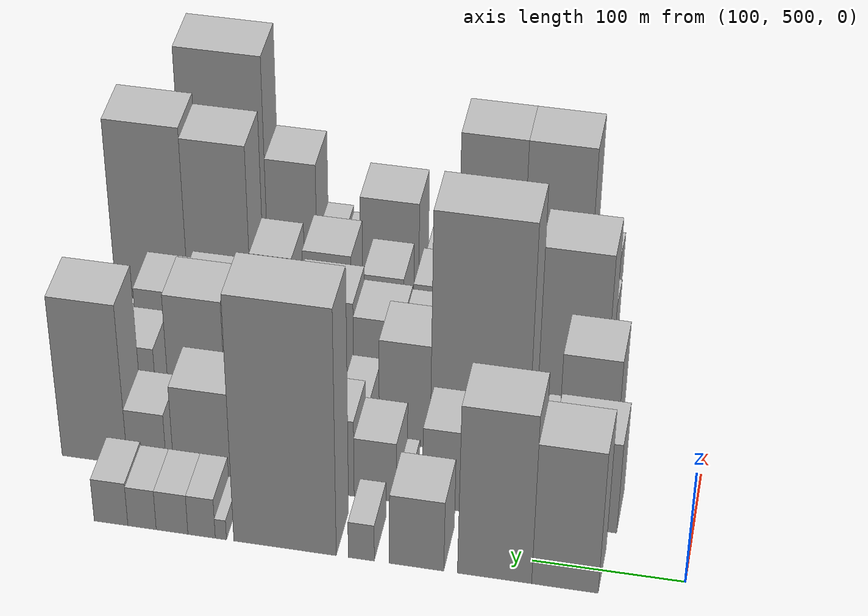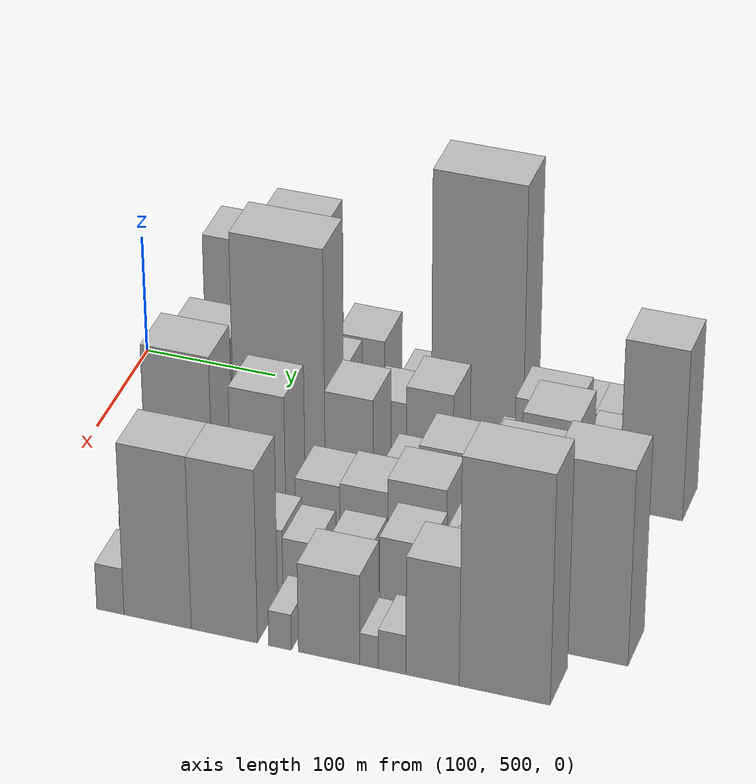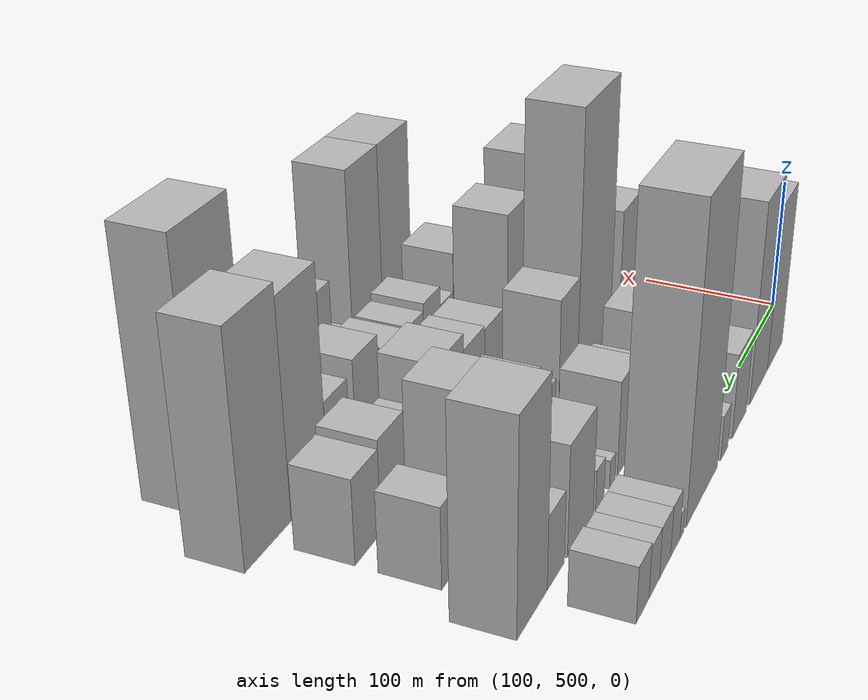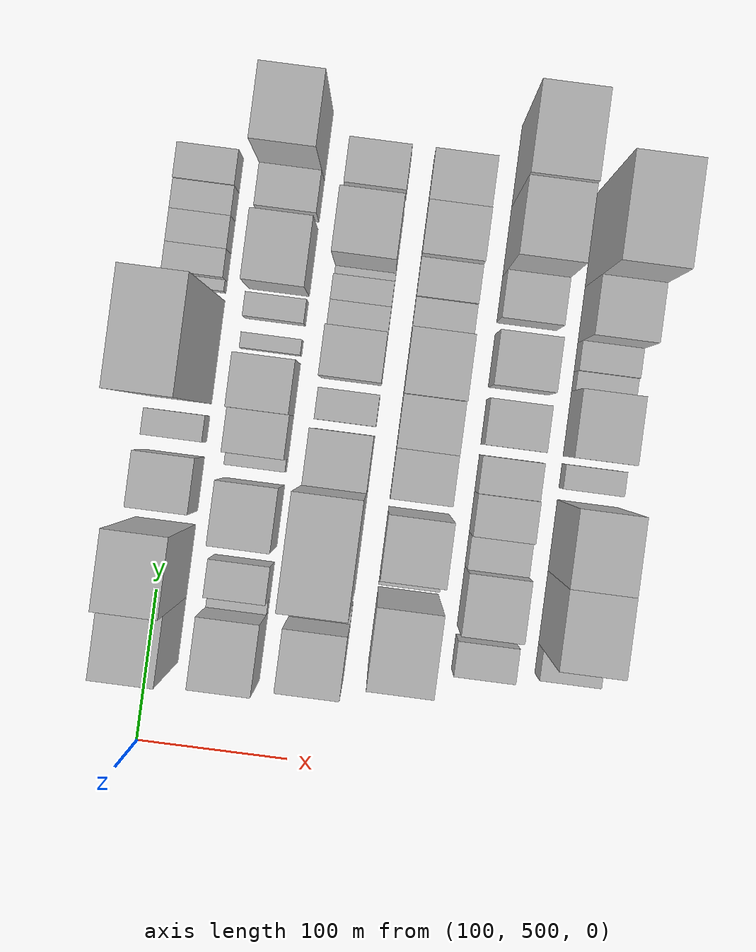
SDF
<sdf version="1.6">
 <world name="default">
  <model name="building_36">
   <static>1</static>
   <pose>100.0000 575.8749 0 0.000000 0.000000 0.000000</pose>
   <link name="link">
    <pose>0 0 63.00 0 0 0</pose>
    <collision name="collision"><geometry><box><size>40.0000 43.3255 126.0000</size></box></geometry></collision>
    <visual name="visual">
     <cast_shadows>0</cast_shadows>
     <geometry><box><size>40.0000 43.3255 126.0000</size></box></geometry>
     <material>
      <script>
       <uri>model://HANNAS_wall/materials/scripts</uri>
       <uri>model://HANNAS_wall/materials/textures</uri>
       <name>vrc/HANNAS_wall</name>
      </script>
     </material>
    </visual>
   </link>
  </model>
  <model name="building_37">
   <static>1</static>
   <pose>100.0000 621.8524 0 0.000000 0.000000 0.000000</pose>
   <link name="link">
    <pose>0 0 75.00 0 0 0</pose>
    <collision name="collision"><geometry><box><size>40.0000 48.6295 150.0000</size></box></geometry></collision>
    <visual name="visual">
     <cast_shadows>0</cast_shadows>
     <geometry><box><size>40.0000 48.6295 150.0000</size></box></geometry>
     <material>
      <script>
       <uri>model://HANNAS_wall/materials/scripts</uri>
       <uri>model://HANNAS_wall/materials/textures</uri>
       <name>vrc/HANNAS_wall</name>
      </script>
     </material>
    </visual>
   </link>
  </model>
  <model name="building_38">
   <static>1</static>
   <pose>100.0000 673.1736 0 0.000000 0.000000 0.000000</pose>
   <link name="link">
    <pose>0 0 31.50 0 0 0</pose>
    <collision name="collision"><geometry><box><size>40.0000 36.0130 63.0000</size></box></geometry></collision>
    <visual name="visual">
     <cast_shadows>0</cast_shadows>
     <geometry><box><size>40.0000 36.0130 63.0000</size></box></geometry>
     <material>
      <script>
       <uri>model://HANNAS_wall/materials/scripts</uri>
       <uri>model://HANNAS_wall/materials/textures</uri>
       <name>vrc/HANNAS_wall</name>
      </script>
     </material>
    </visual>
   </link>
  </model>
  <model name="building_39">
   <static>1</static>
   <pose>100.0000 709.8207 0 0.000000 0.000000 0.000000</pose>
   <link name="link">
    <pose>0 0 16.50 0 0 0</pose>
    <collision name="collision"><geometry><box><size>40.0000 17.2811 33.0000</size></box></geometry></collision>
    <visual name="visual">
     <cast_shadows>0</cast_shadows>
     <geometry><box><size>40.0000 17.2811 33.0000</size></box></geometry>
     <material>
      <script>
       <uri>model://HANNAS_wall/materials/scripts</uri>
       <uri>model://HANNAS_wall/materials/textures</uri>
       <name>vrc/HANNAS_wall</name>
      </script>
     </material>
    </visual>
   </link>
  </model>
  <model name="building_40">
   <static>1</static>
   <pose>100.0000 760.8265 0 0.000000 0.000000 0.000000</pose>
   <link name="link">
    <pose>0 0 108.00 0 0 0</pose>
    <collision name="collision"><geometry><box><size>40.0000 68.7305 216.0000</size></box></geometry></collision>
    <visual name="visual">
     <cast_shadows>0</cast_shadows>
     <geometry><box><size>40.0000 68.7305 216.0000</size></box></geometry>
     <material>
      <script>
       <uri>model://HANNAS_wall/materials/scripts</uri>
       <uri>model://HANNAS_wall/materials/textures</uri>
       <name>vrc/HANNAS_wall</name>
      </script>
     </material>
    </visual>
   </link>
  </model>
  <model name="building_41">
   <static>1</static>
   <pose>100.0000 803.9687 0 0.000000 0.000000 0.000000</pose>
   <link name="link">
    <pose>0 0 9.00 0 0 0</pose>
    <collision name="collision"><geometry><box><size>40.0000 7.5538 18.0000</size></box></geometry></collision>
    <visual name="visual">
     <cast_shadows>0</cast_shadows>
     <geometry><box><size>40.0000 7.5538 18.0000</size></box></geometry>
     <material>
      <script>
       <uri>model://HANNAS_wall/materials/scripts</uri>
       <uri>model://HANNAS_wall/materials/textures</uri>
       <name>vrc/HANNAS_wall</name>
      </script>
     </material>
    </visual>
   </link>
  </model>
  <model name="building_42">
   <static>1</static>
   <pose>100.0000 817.0140 0 0.000000 0.000000 0.000000</pose>
   <link name="link">
    <pose>0 0 18.00 0 0 0</pose>
    <collision name="collision"><geometry><box><size>40.0000 18.5368 36.0000</size></box></geometry></collision>
    <visual name="visual">
     <cast_shadows>0</cast_shadows>
     <geometry><box><size>40.0000 18.5368 36.0000</size></box></geometry>
     <material>
      <script>
       <uri>model://HANNAS_wall/materials/scripts</uri>
       <uri>model://HANNAS_wall/materials/textures</uri>
       <name>vrc/HANNAS_wall</name>
      </script>
     </material>
    </visual>
   </link>
  </model>
  <model name="building_43">
   <static>1</static>
   <pose>100.0000 837.0378 0 0.000000 0.000000 0.000000</pose>
   <link name="link">
    <pose>0 0 18.00 0 0 0</pose>
    <collision name="collision"><geometry><box><size>40.0000 21.5109 36.0000</size></box></geometry></collision>
    <visual name="visual">
     <cast_shadows>0</cast_shadows>
     <geometry><box><size>40.0000 21.5109 36.0000</size></box></geometry>
     <material>
      <script>
       <uri>model://HANNAS_wall/materials/scripts</uri>
       <uri>model://HANNAS_wall/materials/textures</uri>
       <name>vrc/HANNAS_wall</name>
      </script>
     </material>
    </visual>
   </link>
  </model>
  <model name="building_44">
   <static>1</static>
   <pose>100.0000 857.4511 0 0.000000 0.000000 0.000000</pose>
   <link name="link">
    <pose>0 0 18.00 0 0 0</pose>
    <collision name="collision"><geometry><box><size>40.0000 19.3156 36.0000</size></box></geometry></collision>
    <visual name="visual">
     <cast_shadows>0</cast_shadows>
     <geometry><box><size>40.0000 19.3156 36.0000</size></box></geometry>
     <material>
      <script>
       <uri>model://HANNAS_wall/materials/scripts</uri>
       <uri>model://HANNAS_wall/materials/textures</uri>
       <name>vrc/HANNAS_wall</name>
      </script>
     </material>
    </visual>
   </link>
  </model>
  <model name="building_45">
   <static>1</static>
   <pose>100.0000 878.6003 0 0.000000 0.000000 0.000000</pose>
   <link name="link">
    <pose>0 0 19.50 0 0 0</pose>
    <collision name="collision"><geometry><box><size>40.0000 22.9828 39.0000</size></box></geometry></collision>
    <visual name="visual">
     <cast_shadows>0</cast_shadows>
     <geometry><box><size>40.0000 22.9828 39.0000</size></box></geometry>
     <material>
      <script>
       <uri>model://HANNAS_wall/materials/scripts</uri>
       <uri>model://HANNAS_wall/materials/textures</uri>
       <name>vrc/HANNAS_wall</name>
      </script>
     </material>
    </visual>
   </link>
  </model>
  <model name="building_89">
   <static>1</static>
   <pose>155.0000 571.9804 0 0.000000 0.000000 0.000000</pose>
   <link name="link">
    <pose>0 0 40.50 0 0 0</pose>
    <collision name="collision"><geometry><box><size>40.0000 45.4613 81.0000</size></box></geometry></collision>
    <visual name="visual">
     <cast_shadows>0</cast_shadows>
     <geometry><box><size>40.0000 45.4613 81.0000</size></box></geometry>
     <material>
      <script>
       <uri>model://HANNAS_wall/materials/scripts</uri>
       <uri>model://HANNAS_wall/materials/textures</uri>
       <name>vrc/HANNAS_wall</name>
      </script>
     </material>
    </visual>
   </link>
  </model>
  <model name="building_90">
   <static>1</static>
   <pose>155.0000 599.2020 0 0.000000 0.000000 0.000000</pose>
   <link name="link">
    <pose>0 0 9.00 0 0 0</pose>
    <collision name="collision"><geometry><box><size>40.0000 8.9819 18.0000</size></box></geometry></collision>
    <visual name="visual">
     <cast_shadows>0</cast_shadows>
     <geometry><box><size>40.0000 8.9819 18.0000</size></box></geometry>
     <material>
      <script>
       <uri>model://HANNAS_wall/materials/scripts</uri>
       <uri>model://HANNAS_wall/materials/textures</uri>
       <name>vrc/HANNAS_wall</name>
      </script>
     </material>
    </visual>
   </link>
  </model>
  <model name="building_91">
   <static>1</static>
   <pose>155.0000 616.0212 0 0.000000 0.000000 0.000000</pose>
   <link name="link">
    <pose>0 0 24.00 0 0 0</pose>
    <collision name="collision"><geometry><box><size>40.0000 24.6564 48.0000</size></box></geometry></collision>
    <visual name="visual">
     <cast_shadows>0</cast_shadows>
     <geometry><box><size>40.0000 24.6564 48.0000</size></box></geometry>
     <material>
      <script>
       <uri>model://HANNAS_wall/materials/scripts</uri>
       <uri>model://HANNAS_wall/materials/textures</uri>
       <name>vrc/HANNAS_wall</name>
      </script>
     </material>
    </visual>
   </link>
  </model>
  <model name="building_92">
   <static>1</static>
   <pose>155.0000 658.9368 0 0.000000 0.000000 0.000000</pose>
   <link name="link">
    <pose>0 0 36.00 0 0 0</pose>
    <collision name="collision"><geometry><box><size>40.0000 41.1748 72.0000</size></box></geometry></collision>
    <visual name="visual">
     <cast_shadows>0</cast_shadows>
     <geometry><box><size>40.0000 41.1748 72.0000</size></box></geometry>
     <material>
      <script>
       <uri>model://HANNAS_wall/materials/scripts</uri>
       <uri>model://HANNAS_wall/materials/textures</uri>
       <name>vrc/HANNAS_wall</name>
      </script>
     </material>
    </visual>
   </link>
  </model>
  <model name="building_93">
   <static>1</static>
   <pose>155.0000 692.7965 0 0.000000 0.000000 0.000000</pose>
   <link name="link">
    <pose>0 0 10.50 0 0 0</pose>
    <collision name="collision"><geometry><box><size>40.0000 8.5447 21.0000</size></box></geometry></collision>
    <visual name="visual">
     <cast_shadows>0</cast_shadows>
     <geometry><box><size>40.0000 8.5447 21.0000</size></box></geometry>
     <material>
      <script>
       <uri>model://HANNAS_wall/materials/scripts</uri>
       <uri>model://HANNAS_wall/materials/textures</uri>
       <name>vrc/HANNAS_wall</name>
      </script>
     </material>
    </visual>
   </link>
  </model>
  <model name="building_94">
   <static>1</static>
   <pose>155.0000 711.4034 0 0.000000 0.000000 0.000000</pose>
   <link name="link">
    <pose>0 0 27.00 0 0 0</pose>
    <collision name="collision"><geometry><box><size>40.0000 28.6690 54.0000</size></box></geometry></collision>
    <visual name="visual">
     <cast_shadows>0</cast_shadows>
     <geometry><box><size>40.0000 28.6690 54.0000</size></box></geometry>
     <material>
      <script>
       <uri>model://HANNAS_wall/materials/scripts</uri>
       <uri>model://HANNAS_wall/materials/textures</uri>
       <name>vrc/HANNAS_wall</name>
      </script>
     </material>
    </visual>
   </link>
  </model>
  <model name="building_95">
   <static>1</static>
   <pose>155.0000 743.0413 0 0.000000 0.000000 0.000000</pose>
   <link name="link">
    <pose>0 0 34.50 0 0 0</pose>
    <collision name="collision"><geometry><box><size>40.0000 34.6069 69.0000</size></box></geometry></collision>
    <visual name="visual">
     <cast_shadows>0</cast_shadows>
     <geometry><box><size>40.0000 34.6069 69.0000</size></box></geometry>
     <material>
      <script>
       <uri>model://HANNAS_wall/materials/scripts</uri>
       <uri>model://HANNAS_wall/materials/textures</uri>
       <name>vrc/HANNAS_wall</name>
      </script>
     </material>
    </visual>
   </link>
  </model>
  <model name="building_96">
   <static>1</static>
   <pose>155.0000 770.4422 0 0.000000 0.000000 0.000000</pose>
   <link name="link">
    <pose>0 0 10.50 0 0 0</pose>
    <collision name="collision"><geometry><box><size>40.0000 10.1949 21.0000</size></box></geometry></collision>
    <visual name="visual">
     <cast_shadows>0</cast_shadows>
     <geometry><box><size>40.0000 10.1949 21.0000</size></box></geometry>
     <material>
      <script>
       <uri>model://HANNAS_wall/materials/scripts</uri>
       <uri>model://HANNAS_wall/materials/textures</uri>
       <name>vrc/HANNAS_wall</name>
      </script>
     </material>
    </visual>
   </link>
  </model>
  <model name="building_97">
   <static>1</static>
   <pose>155.0000 793.4193 0 0.000000 0.000000 0.000000</pose>
   <link name="link">
    <pose>0 0 15.00 0 0 0</pose>
    <collision name="collision"><geometry><box><size>40.0000 15.7592 30.0000</size></box></geometry></collision>
    <visual name="visual">
     <cast_shadows>0</cast_shadows>
     <geometry><box><size>40.0000 15.7592 30.0000</size></box></geometry>
     <material>
      <script>
       <uri>model://HANNAS_wall/materials/scripts</uri>
       <uri>model://HANNAS_wall/materials/textures</uri>
       <name>vrc/HANNAS_wall</name>
      </script>
     </material>
    </visual>
   </link>
  </model>
  <model name="building_98">
   <static>1</static>
   <pose>155.0000 827.5954 0 0.000000 0.000000 0.000000</pose>
   <link name="link">
    <pose>0 0 39.00 0 0 0</pose>
    <collision name="collision"><geometry><box><size>40.0000 44.5930 78.0000</size></box></geometry></collision>
    <visual name="visual">
     <cast_shadows>0</cast_shadows>
     <geometry><box><size>40.0000 44.5930 78.0000</size></box></geometry>
     <material>
      <script>
       <uri>model://HANNAS_wall/materials/scripts</uri>
       <uri>model://HANNAS_wall/materials/textures</uri>
       <name>vrc/HANNAS_wall</name>
      </script>
     </material>
    </visual>
   </link>
  </model>
  <model name="building_99">
   <static>1</static>
   <pose>155.0000 868.5410 0 0.000000 0.000000 0.000000</pose>
   <link name="link">
    <pose>0 0 25.50 0 0 0</pose>
    <collision name="collision"><geometry><box><size>40.0000 27.2983 51.0000</size></box></geometry></collision>
    <visual name="visual">
     <cast_shadows>0</cast_shadows>
     <geometry><box><size>40.0000 27.2983 51.0000</size></box></geometry>
     <material>
      <script>
       <uri>model://HANNAS_wall/materials/scripts</uri>
       <uri>model://HANNAS_wall/materials/textures</uri>
       <name>vrc/HANNAS_wall</name>
      </script>
     </material>
    </visual>
   </link>
  </model>
  <model name="building_100">
   <static>1</static>
   <pose>155.0000 905.0949 0 0.000000 0.000000 0.000000</pose>
   <link name="link">
    <pose>0 0 72.00 0 0 0</pose>
    <collision name="collision"><geometry><box><size>40.0000 45.8095 144.0000</size></box></geometry></collision>
    <visual name="visual">
     <cast_shadows>0</cast_shadows>
     <geometry><box><size>40.0000 45.8095 144.0000</size></box></geometry>
     <material>
      <script>
       <uri>model://HANNAS_wall/materials/scripts</uri>
       <uri>model://HANNAS_wall/materials/textures</uri>
       <name>vrc/HANNAS_wall</name>
      </script>
     </material>
    </visual>
   </link>
  </model>
  <model name="building_142">
   <static>1</static>
   <pose>210.0000 577.0656 0 0.000000 0.000000 0.000000</pose>
   <link name="link">
    <pose>0 0 51.00 0 0 0</pose>
    <collision name="collision"><geometry><box><size>40.0000 39.5125 102.0000</size></box></geometry></collision>
    <visual name="visual">
     <cast_shadows>0</cast_shadows>
     <geometry><box><size>40.0000 39.5125 102.0000</size></box></geometry>
     <material>
      <script>
       <uri>model://HANNAS_wall/materials/scripts</uri>
       <uri>model://HANNAS_wall/materials/textures</uri>
       <name>vrc/HANNAS_wall</name>
      </script>
     </material>
    </visual>
   </link>
  </model>
  <model name="building_143">
   <static>1</static>
   <pose>210.0000 602.8694 0 0.000000 0.000000 0.000000</pose>
   <link name="link">
    <pose>0 0 13.50 0 0 0</pose>
    <collision name="collision"><geometry><box><size>40.0000 12.0950 27.0000</size></box></geometry></collision>
    <visual name="visual">
     <cast_shadows>0</cast_shadows>
     <geometry><box><size>40.0000 12.0950 27.0000</size></box></geometry>
     <material>
      <script>
       <uri>model://HANNAS_wall/materials/scripts</uri>
       <uri>model://HANNAS_wall/materials/textures</uri>
       <name>vrc/HANNAS_wall</name>
      </script>
     </material>
    </visual>
   </link>
  </model>
  <model name="building_144">
   <static>1</static>
   <pose>210.0000 650.5392 0 0.000000 0.000000 0.000000</pose>
   <link name="link">
    <pose>0 0 105.00 0 0 0</pose>
    <collision name="collision"><geometry><box><size>40.0000 67.2447 210.0000</size></box></geometry></collision>
    <visual name="visual">
     <cast_shadows>0</cast_shadows>
     <geometry><box><size>40.0000 67.2447 210.0000</size></box></geometry>
     <material>
      <script>
       <uri>model://HANNAS_wall/materials/scripts</uri>
       <uri>model://HANNAS_wall/materials/textures</uri>
       <name>vrc/HANNAS_wall</name>
      </script>
     </material>
    </visual>
   </link>
  </model>
  <model name="building_145">
   <static>1</static>
   <pose>210.0000 701.8258 0 0.000000 0.000000 0.000000</pose>
   <link name="link">
    <pose>0 0 46.50 0 0 0</pose>
    <collision name="collision"><geometry><box><size>40.0000 35.3285 93.0000</size></box></geometry></collision>
    <visual name="visual">
     <cast_shadows>0</cast_shadows>
     <geometry><box><size>40.0000 35.3285 93.0000</size></box></geometry>
     <material>
      <script>
       <uri>model://HANNAS_wall/materials/scripts</uri>
       <uri>model://HANNAS_wall/materials/textures</uri>
       <name>vrc/HANNAS_wall</name>
      </script>
     </material>
    </visual>
   </link>
  </model>
  <model name="building_146">
   <static>1</static>
   <pose>210.0000 735.7352 0 0.000000 0.000000 0.000000</pose>
   <link name="link">
    <pose>0 0 19.50 0 0 0</pose>
    <collision name="collision"><geometry><box><size>40.0000 20.4902 39.0000</size></box></geometry></collision>
    <visual name="visual">
     <cast_shadows>0</cast_shadows>
     <geometry><box><size>40.0000 20.4902 39.0000</size></box></geometry>
     <material>
      <script>
       <uri>model://HANNAS_wall/materials/scripts</uri>
       <uri>model://HANNAS_wall/materials/textures</uri>
       <name>vrc/HANNAS_wall</name>
      </script>
     </material>
    </visual>
   </link>
  </model>
  <model name="building_147">
   <static>1</static>
   <pose>210.0000 769.1930 0 0.000000 0.000000 0.000000</pose>
   <link name="link">
    <pose>0 0 31.50 0 0 0</pose>
    <collision name="collision"><geometry><box><size>40.0000 32.4254 63.0000</size></box></geometry></collision>
    <visual name="visual">
     <cast_shadows>0</cast_shadows>
     <geometry><box><size>40.0000 32.4254 63.0000</size></box></geometry>
     <material>
      <script>
       <uri>model://HANNAS_wall/materials/scripts</uri>
       <uri>model://HANNAS_wall/materials/textures</uri>
       <name>vrc/HANNAS_wall</name>
      </script>
     </material>
    </visual>
   </link>
  </model>
  <model name="building_148">
   <static>1</static>
   <pose>210.0000 794.3450 0 0.000000 0.000000 0.000000</pose>
   <link name="link">
    <pose>0 0 16.50 0 0 0</pose>
    <collision name="collision"><geometry><box><size>40.0000 17.8786 33.0000</size></box></geometry></collision>
    <visual name="visual">
     <cast_shadows>0</cast_shadows>
     <geometry><box><size>40.0000 17.8786 33.0000</size></box></geometry>
     <material>
      <script>
       <uri>model://HANNAS_wall/materials/scripts</uri>
       <uri>model://HANNAS_wall/materials/textures</uri>
       <name>vrc/HANNAS_wall</name>
      </script>
     </material>
    </visual>
   </link>
  </model>
  <model name="building_149">
   <static>1</static>
   <pose>210.0000 811.6215 0 0.000000 0.000000 0.000000</pose>
   <link name="link">
    <pose>0 0 16.50 0 0 0</pose>
    <collision name="collision"><geometry><box><size>40.0000 16.6745 33.0000</size></box></geometry></collision>
    <visual name="visual">
     <cast_shadows>0</cast_shadows>
     <geometry><box><size>40.0000 16.6745 33.0000</size></box></geometry>
     <material>
      <script>
       <uri>model://HANNAS_wall/materials/scripts</uri>
       <uri>model://HANNAS_wall/materials/textures</uri>
       <name>vrc/HANNAS_wall</name>
      </script>
     </material>
    </visual>
   </link>
  </model>
  <model name="building_150">
   <static>1</static>
   <pose>210.0000 823.3465 0 0.000000 0.000000 0.000000</pose>
   <link name="link">
    <pose>0 0 7.50 0 0 0</pose>
    <collision name="collision"><geometry><box><size>40.0000 6.7756 15.0000</size></box></geometry></collision>
    <visual name="visual">
     <cast_shadows>0</cast_shadows>
     <geometry><box><size>40.0000 6.7756 15.0000</size></box></geometry>
     <material>
      <script>
       <uri>model://HANNAS_wall/materials/scripts</uri>
       <uri>model://HANNAS_wall/materials/textures</uri>
       <name>vrc/HANNAS_wall</name>
      </script>
     </material>
    </visual>
   </link>
  </model>
  <model name="building_151">
   <static>1</static>
   <pose>210.0000 846.8042 0 0.000000 0.000000 0.000000</pose>
   <link name="link">
    <pose>0 0 54.00 0 0 0</pose>
    <collision name="collision"><geometry><box><size>40.0000 40.1398 108.0000</size></box></geometry></collision>
    <visual name="visual">
     <cast_shadows>0</cast_shadows>
     <geometry><box><size>40.0000 40.1398 108.0000</size></box></geometry>
     <material>
      <script>
       <uri>model://HANNAS_wall/materials/scripts</uri>
       <uri>model://HANNAS_wall/materials/textures</uri>
       <name>vrc/HANNAS_wall</name>
      </script>
     </material>
    </visual>
   </link>
  </model>
  <model name="building_152">
   <static>1</static>
   <pose>210.0000 890.4211 0 0.000000 0.000000 0.000000</pose>
   <link name="link">
    <pose>0 0 28.50 0 0 0</pose>
    <collision name="collision"><geometry><box><size>40.0000 29.0940 57.0000</size></box></geometry></collision>
    <visual name="visual">
     <cast_shadows>0</cast_shadows>
     <geometry><box><size>40.0000 29.0940 57.0000</size></box></geometry>
     <material>
      <script>
       <uri>model://HANNAS_wall/materials/scripts</uri>
       <uri>model://HANNAS_wall/materials/textures</uri>
       <name>vrc/HANNAS_wall</name>
      </script>
     </material>
    </visual>
   </link>
  </model>
  <model name="building_196">
   <static>1</static>
   <pose>265.0000 596.4431 0 0.000000 0.000000 0.000000</pose>
   <link name="link">
    <pose>0 0 72.00 0 0 0</pose>
    <collision name="collision"><geometry><box><size>40.0000 49.4608 144.0000</size></box></geometry></collision>
    <visual name="visual">
     <cast_shadows>0</cast_shadows>
     <geometry><box><size>40.0000 49.4608 144.0000</size></box></geometry>
     <material>
      <script>
       <uri>model://HANNAS_wall/materials/scripts</uri>
       <uri>model://HANNAS_wall/materials/textures</uri>
       <name>vrc/HANNAS_wall</name>
      </script>
     </material>
    </visual>
   </link>
  </model>
  <model name="building_197">
   <static>1</static>
   <pose>265.0000 629.4022 0 0.000000 0.000000 0.000000</pose>
   <link name="link">
    <pose>0 0 10.50 0 0 0</pose>
    <collision name="collision"><geometry><box><size>40.0000 10.4574 21.0000</size></box></geometry></collision>
    <visual name="visual">
     <cast_shadows>0</cast_shadows>
     <geometry><box><size>40.0000 10.4574 21.0000</size></box></geometry>
     <material>
      <script>
       <uri>model://HANNAS_wall/materials/scripts</uri>
       <uri>model://HANNAS_wall/materials/textures</uri>
       <name>vrc/HANNAS_wall</name>
      </script>
     </material>
    </visual>
   </link>
  </model>
  <model name="building_198">
   <static>1</static>
   <pose>265.0000 654.6490 0 0.000000 0.000000 0.000000</pose>
   <link name="link">
    <pose>0 0 61.50 0 0 0</pose>
    <collision name="collision"><geometry><box><size>40.0000 40.0362 123.0000</size></box></geometry></collision>
    <visual name="visual">
     <cast_shadows>0</cast_shadows>
     <geometry><box><size>40.0000 40.0362 123.0000</size></box></geometry>
     <material>
      <script>
       <uri>model://HANNAS_wall/materials/scripts</uri>
       <uri>model://HANNAS_wall/materials/textures</uri>
       <name>vrc/HANNAS_wall</name>
      </script>
     </material>
    </visual>
   </link>
  </model>
  <model name="building_199">
   <static>1</static>
   <pose>265.0000 697.8861 0 0.000000 0.000000 0.000000</pose>
   <link name="link">
    <pose>0 0 28.50 0 0 0</pose>
    <collision name="collision"><geometry><box><size>40.0000 32.4381 57.0000</size></box></geometry></collision>
    <visual name="visual">
     <cast_shadows>0</cast_shadows>
     <geometry><box><size>40.0000 32.4381 57.0000</size></box></geometry>
     <material>
      <script>
       <uri>model://HANNAS_wall/materials/scripts</uri>
       <uri>model://HANNAS_wall/materials/textures</uri>
       <name>vrc/HANNAS_wall</name>
      </script>
     </material>
    </visual>
   </link>
  </model>
  <model name="building_200">
   <static>1</static>
   <pose>265.0000 731.2987 0 0.000000 0.000000 0.000000</pose>
   <link name="link">
    <pose>0 0 30.00 0 0 0</pose>
    <collision name="collision"><geometry><box><size>40.0000 34.3870 60.0000</size></box></geometry></collision>
    <visual name="visual">
     <cast_shadows>0</cast_shadows>
     <geometry><box><size>40.0000 34.3870 60.0000</size></box></geometry>
     <material>
      <script>
       <uri>model://HANNAS_wall/materials/scripts</uri>
       <uri>model://HANNAS_wall/materials/textures</uri>
       <name>vrc/HANNAS_wall</name>
      </script>
     </material>
    </visual>
   </link>
  </model>
  <model name="building_201">
   <static>1</static>
   <pose>265.0000 769.5660 0 0.000000 0.000000 0.000000</pose>
   <link name="link">
    <pose>0 0 36.00 0 0 0</pose>
    <collision name="collision"><geometry><box><size>40.0000 42.1476 72.0000</size></box></geometry></collision>
    <visual name="visual">
     <cast_shadows>0</cast_shadows>
     <geometry><box><size>40.0000 42.1476 72.0000</size></box></geometry>
     <material>
      <script>
       <uri>model://HANNAS_wall/materials/scripts</uri>
       <uri>model://HANNAS_wall/materials/textures</uri>
       <name>vrc/HANNAS_wall</name>
      </script>
     </material>
    </visual>
   </link>
  </model>
  <model name="building_202">
   <static>1</static>
   <pose>265.0000 801.1476 0 0.000000 0.000000 0.000000</pose>
   <link name="link">
    <pose>0 0 19.50 0 0 0</pose>
    <collision name="collision"><geometry><box><size>40.0000 21.0156 39.0000</size></box></geometry></collision>
    <visual name="visual">
     <cast_shadows>0</cast_shadows>
     <geometry><box><size>40.0000 21.0156 39.0000</size></box></geometry>
     <material>
      <script>
       <uri>model://HANNAS_wall/materials/scripts</uri>
       <uri>model://HANNAS_wall/materials/textures</uri>
       <name>vrc/HANNAS_wall</name>
      </script>
     </material>
    </visual>
   </link>
  </model>
  <model name="building_203">
   <static>1</static>
   <pose>265.0000 824.2823 0 0.000000 0.000000 0.000000</pose>
   <link name="link">
    <pose>0 0 22.50 0 0 0</pose>
    <collision name="collision"><geometry><box><size>40.0000 25.2537 45.0000</size></box></geometry></collision>
    <visual name="visual">
     <cast_shadows>0</cast_shadows>
     <geometry><box><size>40.0000 25.2537 45.0000</size></box></geometry>
     <material>
      <script>
       <uri>model://HANNAS_wall/materials/scripts</uri>
       <uri>model://HANNAS_wall/materials/textures</uri>
       <name>vrc/HANNAS_wall</name>
      </script>
     </material>
    </visual>
   </link>
  </model>
  <model name="building_204">
   <static>1</static>
   <pose>265.0000 854.0067 0 0.000000 0.000000 0.000000</pose>
   <link name="link">
    <pose>0 0 33.00 0 0 0</pose>
    <collision name="collision"><geometry><box><size>40.0000 34.1953 66.0000</size></box></geometry></collision>
    <visual name="visual">
     <cast_shadows>0</cast_shadows>
     <geometry><box><size>40.0000 34.1953 66.0000</size></box></geometry>
     <material>
      <script>
       <uri>model://HANNAS_wall/materials/scripts</uri>
       <uri>model://HANNAS_wall/materials/textures</uri>
       <name>vrc/HANNAS_wall</name>
      </script>
     </material>
    </visual>
   </link>
  </model>
  <model name="building_205">
   <static>1</static>
   <pose>265.0000 887.7795 0 0.000000 0.000000 0.000000</pose>
   <link name="link">
    <pose>0 0 30.00 0 0 0</pose>
    <collision name="collision"><geometry><box><size>40.0000 33.3503 60.0000</size></box></geometry></collision>
    <visual name="visual">
     <cast_shadows>0</cast_shadows>
     <geometry><box><size>40.0000 33.3503 60.0000</size></box></geometry>
     <material>
      <script>
       <uri>model://HANNAS_wall/materials/scripts</uri>
       <uri>model://HANNAS_wall/materials/textures</uri>
       <name>vrc/HANNAS_wall</name>
      </script>
     </material>
    </visual>
   </link>
  </model>
  <model name="building_246">
   <static>1</static>
   <pose>320.0000 585.1542 0 0.000000 0.000000 0.000000</pose>
   <link name="link">
    <pose>0 0 21.00 0 0 0</pose>
    <collision name="collision"><geometry><box><size>40.0000 22.9313 42.0000</size></box></geometry></collision>
    <visual name="visual">
     <cast_shadows>0</cast_shadows>
     <geometry><box><size>40.0000 22.9313 42.0000</size></box></geometry>
     <material>
      <script>
       <uri>model://HANNAS_wall/materials/scripts</uri>
       <uri>model://HANNAS_wall/materials/textures</uri>
       <name>vrc/HANNAS_wall</name>
      </script>
     </material>
    </visual>
   </link>
  </model>
  <model name="building_247">
   <static>1</static>
   <pose>320.0000 622.5017 0 0.000000 0.000000 0.000000</pose>
   <link name="link">
    <pose>0 0 34.50 0 0 0</pose>
    <collision name="collision"><geometry><box><size>40.0000 39.7637 69.0000</size></box></geometry></collision>
    <visual name="visual">
     <cast_shadows>0</cast_shadows>
     <geometry><box><size>40.0000 39.7637 69.0000</size></box></geometry>
     <material>
      <script>
       <uri>model://HANNAS_wall/materials/scripts</uri>
       <uri>model://HANNAS_wall/materials/textures</uri>
       <name>vrc/HANNAS_wall</name>
      </script>
     </material>
    </visual>
   </link>
  </model>
  <model name="building_248">
   <static>1</static>
   <pose>320.0000 653.5473 0 0.000000 0.000000 0.000000</pose>
   <link name="link">
    <pose>0 0 19.50 0 0 0</pose>
    <collision name="collision"><geometry><box><size>40.0000 22.3275 39.0000</size></box></geometry></collision>
    <visual name="visual">
     <cast_shadows>0</cast_shadows>
     <geometry><box><size>40.0000 22.3275 39.0000</size></box></geometry>
     <material>
      <script>
       <uri>model://HANNAS_wall/materials/scripts</uri>
       <uri>model://HANNAS_wall/materials/textures</uri>
       <name>vrc/HANNAS_wall</name>
      </script>
     </material>
    </visual>
   </link>
  </model>
  <model name="building_249">
   <static>1</static>
   <pose>320.0000 678.3117 0 0.000000 0.000000 0.000000</pose>
   <link name="link">
    <pose>0 0 27.00 0 0 0</pose>
    <collision name="collision"><geometry><box><size>40.0000 27.2012 54.0000</size></box></geometry></collision>
    <visual name="visual">
     <cast_shadows>0</cast_shadows>
     <geometry><box><size>40.0000 27.2012 54.0000</size></box></geometry>
     <material>
      <script>
       <uri>model://HANNAS_wall/materials/scripts</uri>
       <uri>model://HANNAS_wall/materials/textures</uri>
       <name>vrc/HANNAS_wall</name>
      </script>
     </material>
    </visual>
   </link>
  </model>
  <model name="building_250">
   <static>1</static>
   <pose>320.0000 704.0834 0 0.000000 0.000000 0.000000</pose>
   <link name="link">
    <pose>0 0 24.00 0 0 0</pose>
    <collision name="collision"><geometry><box><size>40.0000 24.3422 48.0000</size></box></geometry></collision>
    <visual name="visual">
     <cast_shadows>0</cast_shadows>
     <geometry><box><size>40.0000 24.3422 48.0000</size></box></geometry>
     <material>
      <script>
       <uri>model://HANNAS_wall/materials/scripts</uri>
       <uri>model://HANNAS_wall/materials/textures</uri>
       <name>vrc/HANNAS_wall</name>
      </script>
     </material>
    </visual>
   </link>
  </model>
  <model name="building_251">
   <static>1</static>
   <pose>320.0000 738.2013 0 0.000000 0.000000 0.000000</pose>
   <link name="link">
    <pose>0 0 25.50 0 0 0</pose>
    <collision name="collision"><geometry><box><size>40.0000 29.8935 51.0000</size></box></geometry></collision>
    <visual name="visual">
     <cast_shadows>0</cast_shadows>
     <geometry><box><size>40.0000 29.8935 51.0000</size></box></geometry>
     <material>
      <script>
       <uri>model://HANNAS_wall/materials/scripts</uri>
       <uri>model://HANNAS_wall/materials/textures</uri>
       <name>vrc/HANNAS_wall</name>
      </script>
     </material>
    </visual>
   </link>
  </model>
  <model name="building_252">
   <static>1</static>
   <pose>320.0000 778.6388 0 0.000000 0.000000 0.000000</pose>
   <link name="link">
    <pose>0 0 33.00 0 0 0</pose>
    <collision name="collision"><geometry><box><size>40.0000 34.9814 66.0000</size></box></geometry></collision>
    <visual name="visual">
     <cast_shadows>0</cast_shadows>
     <geometry><box><size>40.0000 34.9814 66.0000</size></box></geometry>
     <material>
      <script>
       <uri>model://HANNAS_wall/materials/scripts</uri>
       <uri>model://HANNAS_wall/materials/textures</uri>
       <name>vrc/HANNAS_wall</name>
      </script>
     </material>
    </visual>
   </link>
  </model>
  <model name="building_253">
   <static>1</static>
   <pose>320.0000 819.4130 0 0.000000 0.000000 0.000000</pose>
   <link name="link">
    <pose>0 0 28.50 0 0 0</pose>
    <collision name="collision"><geometry><box><size>40.0000 30.5671 57.0000</size></box></geometry></collision>
    <visual name="visual">
     <cast_shadows>0</cast_shadows>
     <geometry><box><size>40.0000 30.5671 57.0000</size></box></geometry>
     <material>
      <script>
       <uri>model://HANNAS_wall/materials/scripts</uri>
       <uri>model://HANNAS_wall/materials/textures</uri>
       <name>vrc/HANNAS_wall</name>
      </script>
     </material>
    </visual>
   </link>
  </model>
  <model name="building_254">
   <static>1</static>
   <pose>320.0000 857.8617 0 0.000000 0.000000 0.000000</pose>
   <link name="link">
    <pose>0 0 76.50 0 0 0</pose>
    <collision name="collision"><geometry><box><size>40.0000 46.3305 153.0000</size></box></geometry></collision>
    <visual name="visual">
     <cast_shadows>0</cast_shadows>
     <geometry><box><size>40.0000 46.3305 153.0000</size></box></geometry>
     <material>
      <script>
       <uri>model://HANNAS_wall/materials/scripts</uri>
       <uri>model://HANNAS_wall/materials/textures</uri>
       <name>vrc/HANNAS_wall</name>
      </script>
     </material>
    </visual>
   </link>
  </model>
  <model name="building_255">
   <static>1</static>
   <pose>320.0000 908.0975 0 0.000000 0.000000 0.000000</pose>
   <link name="link">
    <pose>0 0 81.00 0 0 0</pose>
    <collision name="collision"><geometry><box><size>40.0000 54.1410 162.0000</size></box></geometry></collision>
    <visual name="visual">
     <cast_shadows>0</cast_shadows>
     <geometry><box><size>40.0000 54.1410 162.0000</size></box></geometry>
     <material>
      <script>
       <uri>model://HANNAS_wall/materials/scripts</uri>
       <uri>model://HANNAS_wall/materials/textures</uri>
       <name>vrc/HANNAS_wall</name>
      </script>
     </material>
    </visual>
   </link>
  </model>
  <model name="building_298">
   <static>1</static>
   <pose>375.0000 587.7163 0 0.000000 0.000000 0.000000</pose>
   <link name="link">
    <pose>0 0 19.50 0 0 0</pose>
    <collision name="collision"><geometry><box><size>40.0000 19.7236 39.0000</size></box></geometry></collision>
    <visual name="visual">
     <cast_shadows>0</cast_shadows>
     <geometry><box><size>40.0000 19.7236 39.0000</size></box></geometry>
     <material>
      <script>
       <uri>model://HANNAS_wall/materials/scripts</uri>
       <uri>model://HANNAS_wall/materials/textures</uri>
       <name>vrc/HANNAS_wall</name>
      </script>
     </material>
    </visual>
   </link>
  </model>
  <model name="building_299">
   <static>1</static>
   <pose>375.0000 621.8165 0 0.000000 0.000000 0.000000</pose>
   <link name="link">
    <pose>0 0 72.00 0 0 0</pose>
    <collision name="collision"><geometry><box><size>40.0000 48.4768 144.0000</size></box></geometry></collision>
    <visual name="visual">
     <cast_shadows>0</cast_shadows>
     <geometry><box><size>40.0000 48.4768 144.0000</size></box></geometry>
     <material>
      <script>
       <uri>model://HANNAS_wall/materials/scripts</uri>
       <uri>model://HANNAS_wall/materials/textures</uri>
       <name>vrc/HANNAS_wall</name>
      </script>
     </material>
    </visual>
   </link>
  </model>
  <model name="building_300">
   <static>1</static>
   <pose>375.0000 669.7346 0 0.000000 0.000000 0.000000</pose>
   <link name="link">
    <pose>0 0 72.00 0 0 0</pose>
    <collision name="collision"><geometry><box><size>40.0000 47.3594 144.0000</size></box></geometry></collision>
    <visual name="visual">
     <cast_shadows>0</cast_shadows>
     <geometry><box><size>40.0000 47.3594 144.0000</size></box></geometry>
     <material>
      <script>
       <uri>model://HANNAS_wall/materials/scripts</uri>
       <uri>model://HANNAS_wall/materials/textures</uri>
       <name>vrc/HANNAS_wall</name>
      </script>
     </material>
    </visual>
   </link>
  </model>
  <model name="building_301">
   <static>1</static>
   <pose>375.0000 709.4350 0 0.000000 0.000000 0.000000</pose>
   <link name="link">
    <pose>0 0 15.00 0 0 0</pose>
    <collision name="collision"><geometry><box><size>40.0000 16.0414 30.0000</size></box></geometry></collision>
    <visual name="visual">
     <cast_shadows>0</cast_shadows>
     <geometry><box><size>40.0000 16.0414 30.0000</size></box></geometry>
     <material>
      <script>
       <uri>model://HANNAS_wall/materials/scripts</uri>
       <uri>model://HANNAS_wall/materials/textures</uri>
       <name>vrc/HANNAS_wall</name>
      </script>
     </material>
    </visual>
   </link>
  </model>
  <model name="building_302">
   <static>1</static>
   <pose>375.0000 744.1153 0 0.000000 0.000000 0.000000</pose>
   <link name="link">
    <pose>0 0 37.50 0 0 0</pose>
    <collision name="collision"><geometry><box><size>40.0000 43.3192 75.0000</size></box></geometry></collision>
    <visual name="visual">
     <cast_shadows>0</cast_shadows>
     <geometry><box><size>40.0000 43.3192 75.0000</size></box></geometry>
     <material>
      <script>
       <uri>model://HANNAS_wall/materials/scripts</uri>
       <uri>model://HANNAS_wall/materials/textures</uri>
       <name>vrc/HANNAS_wall</name>
      </script>
     </material>
    </visual>
   </link>
  </model>
  <model name="building_303">
   <static>1</static>
   <pose>375.0000 772.1477 0 0.000000 0.000000 0.000000</pose>
   <link name="link">
    <pose>0 0 13.50 0 0 0</pose>
    <collision name="collision"><geometry><box><size>40.0000 12.7457 27.0000</size></box></geometry></collision>
    <visual name="visual">
     <cast_shadows>0</cast_shadows>
     <geometry><box><size>40.0000 12.7457 27.0000</size></box></geometry>
     <material>
      <script>
       <uri>model://HANNAS_wall/materials/scripts</uri>
       <uri>model://HANNAS_wall/materials/textures</uri>
       <name>vrc/HANNAS_wall</name>
      </script>
     </material>
    </visual>
   </link>
  </model>
  <model name="building_304">
   <static>1</static>
   <pose>375.0000 788.2563 0 0.000000 0.000000 0.000000</pose>
   <link name="link">
    <pose>0 0 16.50 0 0 0</pose>
    <collision name="collision"><geometry><box><size>40.0000 19.4715 33.0000</size></box></geometry></collision>
    <visual name="visual">
     <cast_shadows>0</cast_shadows>
     <geometry><box><size>40.0000 19.4715 33.0000</size></box></geometry>
     <material>
      <script>
       <uri>model://HANNAS_wall/materials/scripts</uri>
       <uri>model://HANNAS_wall/materials/textures</uri>
       <name>vrc/HANNAS_wall</name>
      </script>
     </material>
    </visual>
   </link>
  </model>
  <model name="building_305">
   <static>1</static>
   <pose>375.0000 816.5267 0 0.000000 0.000000 0.000000</pose>
   <link name="link">
    <pose>0 0 49.50 0 0 0</pose>
    <collision name="collision"><geometry><box><size>40.0000 37.0694 99.0000</size></box></geometry></collision>
    <visual name="visual">
     <cast_shadows>0</cast_shadows>
     <geometry><box><size>40.0000 37.0694 99.0000</size></box></geometry>
     <material>
      <script>
       <uri>model://HANNAS_wall/materials/scripts</uri>
       <uri>model://HANNAS_wall/materials/textures</uri>
       <name>vrc/HANNAS_wall</name>
      </script>
     </material>
    </visual>
   </link>
  </model>
  <model name="building_306">
   <static>1</static>
   <pose>375.0000 866.3519 0 0.000000 0.000000 0.000000</pose>
   <link name="link">
    <pose>0 0 94.50 0 0 0</pose>
    <collision name="collision"><geometry><box><size>40.0000 62.5810 189.0000</size></box></geometry></collision>
    <visual name="visual">
     <cast_shadows>0</cast_shadows>
     <geometry><box><size>40.0000 62.5810 189.0000</size></box></geometry>
     <material>
      <script>
       <uri>model://HANNAS_wall/materials/scripts</uri>
       <uri>model://HANNAS_wall/materials/textures</uri>
       <name>vrc/HANNAS_wall</name>
      </script>
     </material>
    </visual>
   </link>
  </model>
 </world>
</sdf>
